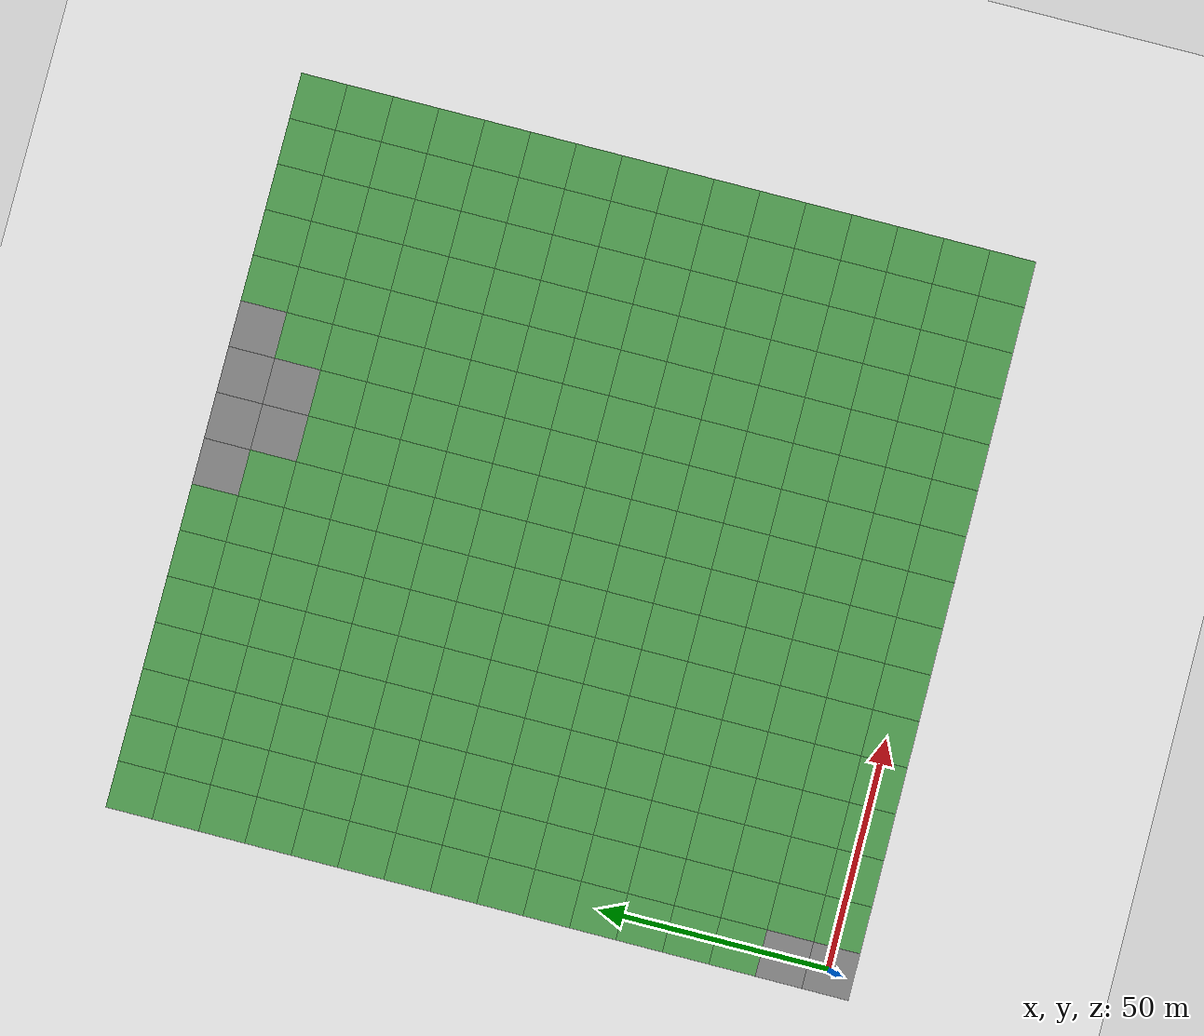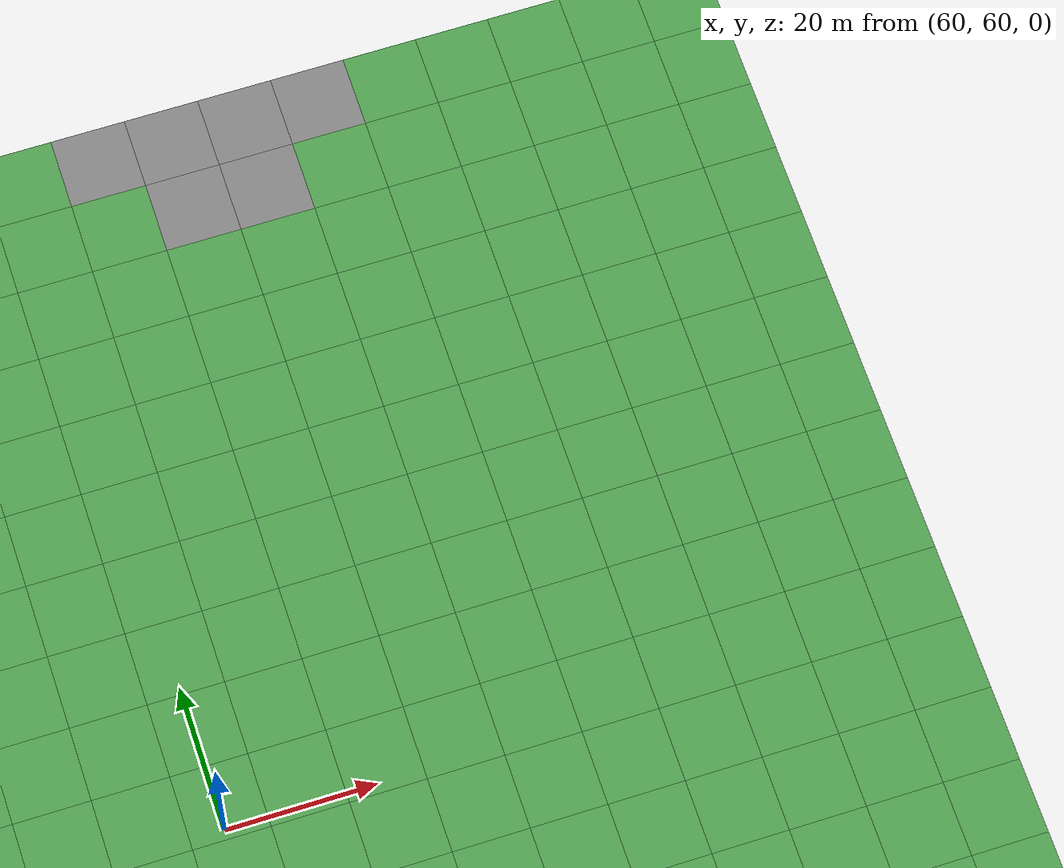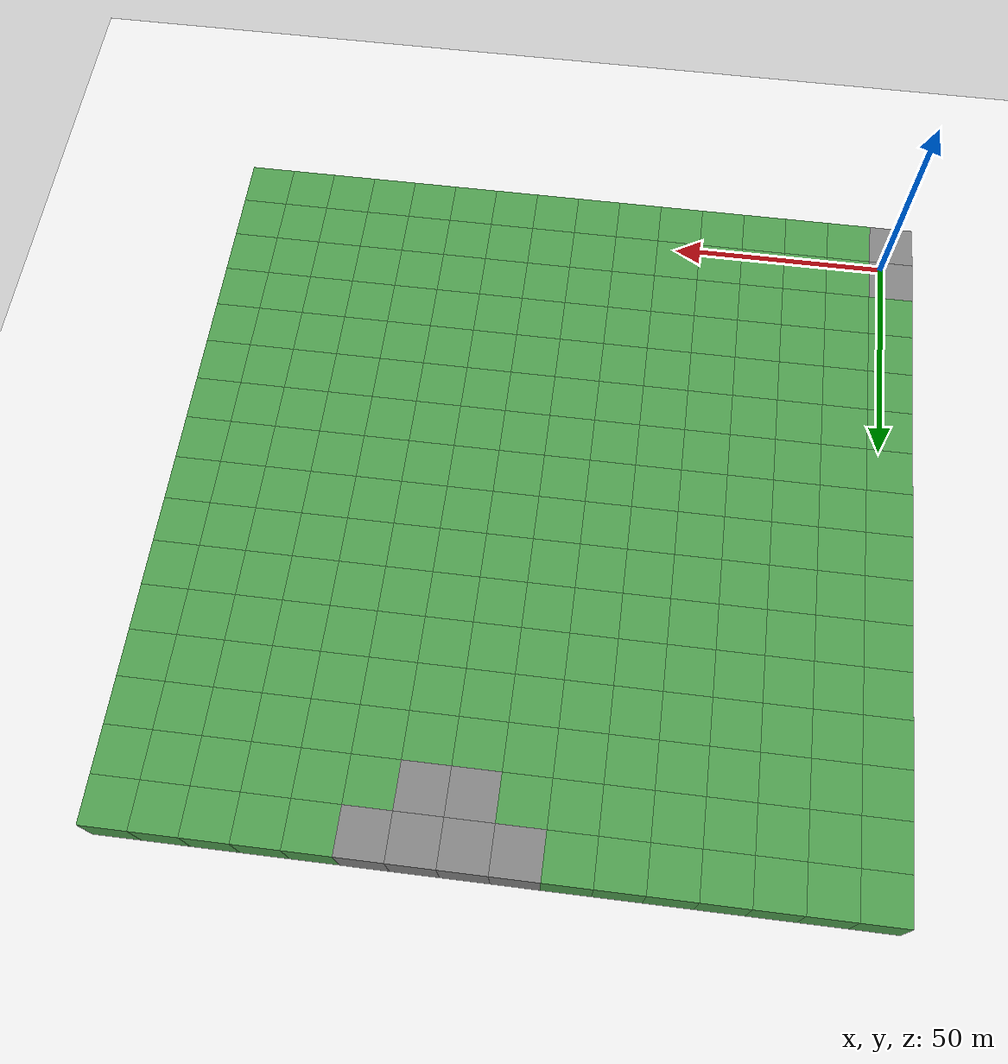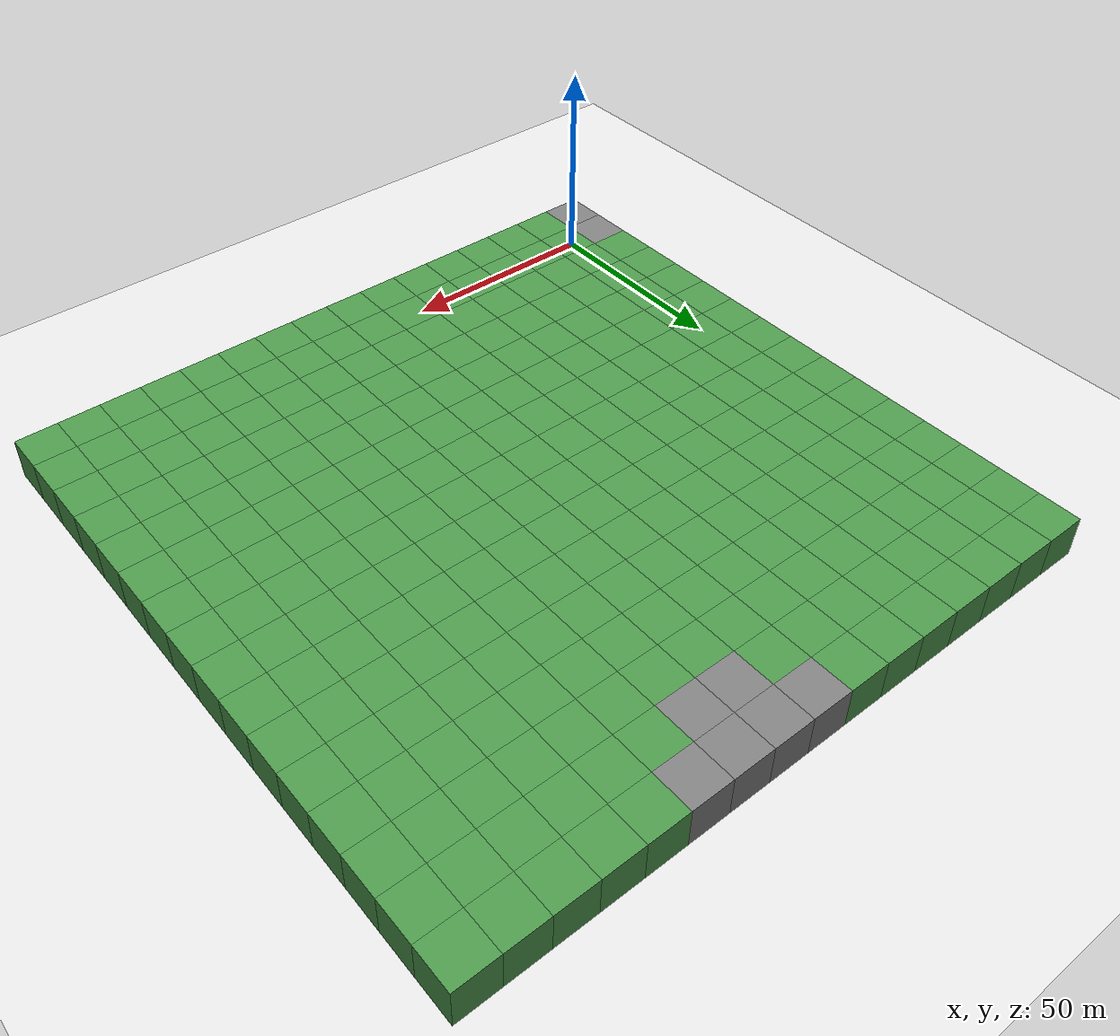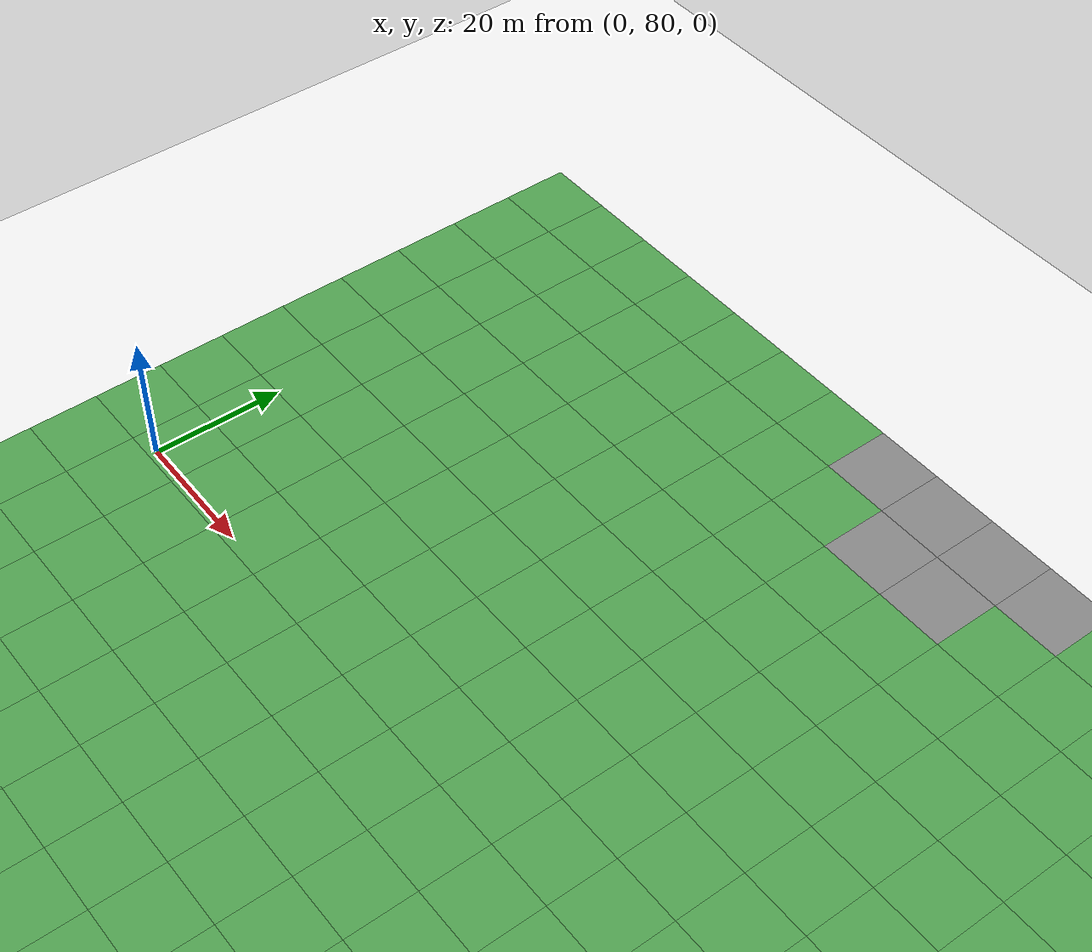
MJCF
<mujoco model="mca_arena">
  <default>
    <default class="/"/>
  </default>
  <worldbody>
    <geom name="floor" class="/" type="plane" size="500 500 0.10000000000000001" rgba="0.90000000000000002 0.90000000000000002 0.90000000000000002 1" pos="0 0 0"/>
    <geom name="cave_air_0_0" class="/" type="box" size="5 5 5" rgba="0.5 0.5 0.5 1" pos="0 0 5"/>
    <geom name="cave_air_0_1" class="/" type="box" size="5 5 5" rgba="0.5 0.5 0.5 1" pos="0 10 5"/>
    <geom name="grass_block_0_2" class="/" type="box" size="5 5 5" rgba="0.29999999999999999 0.59999999999999998 0.29999999999999999 1" pos="0 20 5"/>
    <geom name="grass_block_0_3" class="/" type="box" size="5 5 5" rgba="0.29999999999999999 0.59999999999999998 0.29999999999999999 1" pos="0 30 5"/>
    <geom name="grass_block_0_4" class="/" type="box" size="5 5 5" rgba="0.29999999999999999 0.59999999999999998 0.29999999999999999 1" pos="0 40 5"/>
    <geom name="grass_block_0_5" class="/" type="box" size="5 5 5" rgba="0.29999999999999999 0.59999999999999998 0.29999999999999999 1" pos="0 50 5"/>
    <geom name="grass_block_0_6" class="/" type="box" size="5 5 5" rgba="0.29999999999999999 0.59999999999999998 0.29999999999999999 1" pos="0 60 5"/>
    <geom name="grass_block_0_7" class="/" type="box" size="5 5 5" rgba="0.29999999999999999 0.59999999999999998 0.29999999999999999 1" pos="0 70 5"/>
    <geom name="grass_block_0_8" class="/" type="box" size="5 5 5" rgba="0.29999999999999999 0.59999999999999998 0.29999999999999999 1" pos="0 80 5"/>
    <geom name="grass_block_0_9" class="/" type="box" size="5 5 5" rgba="0.29999999999999999 0.59999999999999998 0.29999999999999999 1" pos="0 90 5"/>
    <geom name="grass_block_0_10" class="/" type="box" size="5 5 5" rgba="0.29999999999999999 0.59999999999999998 0.29999999999999999 1" pos="0 100 5"/>
    <geom name="grass_0_11" class="/" type="box" size="5 5 5" rgba="0.29999999999999999 0.59999999999999998 0.29999999999999999 1" pos="0 110 5"/>
    <geom name="grass_block_0_12" class="/" type="box" size="5 5 5" rgba="0.29999999999999999 0.59999999999999998 0.29999999999999999 1" pos="0 120 5"/>
    <geom name="grass_block_0_13" class="/" type="box" size="5 5 5" rgba="0.29999999999999999 0.59999999999999998 0.29999999999999999 1" pos="0 130 5"/>
    <geom name="grass_block_0_14" class="/" type="box" size="5 5 5" rgba="0.29999999999999999 0.59999999999999998 0.29999999999999999 1" pos="0 140 5"/>
    <geom name="grass_block_0_15" class="/" type="box" size="5 5 5" rgba="0.29999999999999999 0.59999999999999998 0.29999999999999999 1" pos="0 150 5"/>
    <geom name="grass_block_1_0" class="/" type="box" size="5 5 5" rgba="0.29999999999999999 0.59999999999999998 0.29999999999999999 1" pos="10 0 5"/>
    <geom name="grass_block_1_1" class="/" type="box" size="5 5 5" rgba="0.29999999999999999 0.59999999999999998 0.29999999999999999 1" pos="10 10 5"/>
    <geom name="grass_1_2" class="/" type="box" size="5 5 5" rgba="0.29999999999999999 0.59999999999999998 0.29999999999999999 1" pos="10 20 5"/>
    <geom name="grass_block_1_3" class="/" type="box" size="5 5 5" rgba="0.29999999999999999 0.59999999999999998 0.29999999999999999 1" pos="10 30 5"/>
    <geom name="grass_block_1_4" class="/" type="box" size="5 5 5" rgba="0.29999999999999999 0.59999999999999998 0.29999999999999999 1" pos="10 40 5"/>
    <geom name="grass_block_1_5" class="/" type="box" size="5 5 5" rgba="0.29999999999999999 0.59999999999999998 0.29999999999999999 1" pos="10 50 5"/>
    <geom name="grass_block_1_6" class="/" type="box" size="5 5 5" rgba="0.29999999999999999 0.59999999999999998 0.29999999999999999 1" pos="10 60 5"/>
    <geom name="grass_block_1_7" class="/" type="box" size="5 5 5" rgba="0.29999999999999999 0.59999999999999998 0.29999999999999999 1" pos="10 70 5"/>
    <geom name="grass_block_1_8" class="/" type="box" size="5 5 5" rgba="0.29999999999999999 0.59999999999999998 0.29999999999999999 1" pos="10 80 5"/>
    <geom name="grass_block_1_9" class="/" type="box" size="5 5 5" rgba="0.29999999999999999 0.59999999999999998 0.29999999999999999 1" pos="10 90 5"/>
    <geom name="grass_block_1_10" class="/" type="box" size="5 5 5" rgba="0.29999999999999999 0.59999999999999998 0.29999999999999999 1" pos="10 100 5"/>
    <geom name="grass_block_1_11" class="/" type="box" size="5 5 5" rgba="0.29999999999999999 0.59999999999999998 0.29999999999999999 1" pos="10 110 5"/>
    <geom name="grass_block_1_12" class="/" type="box" size="5 5 5" rgba="0.29999999999999999 0.59999999999999998 0.29999999999999999 1" pos="10 120 5"/>
    <geom name="grass_block_1_13" class="/" type="box" size="5 5 5" rgba="0.29999999999999999 0.59999999999999998 0.29999999999999999 1" pos="10 130 5"/>
    <geom name="grass_block_1_14" class="/" type="box" size="5 5 5" rgba="0.29999999999999999 0.59999999999999998 0.29999999999999999 1" pos="10 140 5"/>
    <geom name="grass_block_1_15" class="/" type="box" size="5 5 5" rgba="0.29999999999999999 0.59999999999999998 0.29999999999999999 1" pos="10 150 5"/>
    <geom name="tall_grass_2_0" class="/" type="box" size="5 5 5" rgba="0.29999999999999999 0.59999999999999998 0.29999999999999999 1" pos="20 0 5"/>
    <geom name="grass_block_2_1" class="/" type="box" size="5 5 5" rgba="0.29999999999999999 0.59999999999999998 0.29999999999999999 1" pos="20 10 5"/>
    <geom name="grass_2_2" class="/" type="box" size="5 5 5" rgba="0.29999999999999999 0.59999999999999998 0.29999999999999999 1" pos="20 20 5"/>
    <geom name="grass_block_2_3" class="/" type="box" size="5 5 5" rgba="0.29999999999999999 0.59999999999999998 0.29999999999999999 1" pos="20 30 5"/>
    <geom name="grass_block_2_4" class="/" type="box" size="5 5 5" rgba="0.29999999999999999 0.59999999999999998 0.29999999999999999 1" pos="20 40 5"/>
    <geom name="grass_block_2_5" class="/" type="box" size="5 5 5" rgba="0.29999999999999999 0.59999999999999998 0.29999999999999999 1" pos="20 50 5"/>
    <geom name="grass_block_2_6" class="/" type="box" size="5 5 5" rgba="0.29999999999999999 0.59999999999999998 0.29999999999999999 1" pos="20 60 5"/>
    <geom name="grass_2_7" class="/" type="box" size="5 5 5" rgba="0.29999999999999999 0.59999999999999998 0.29999999999999999 1" pos="20 70 5"/>
    <geom name="grass_block_2_8" class="/" type="box" size="5 5 5" rgba="0.29999999999999999 0.59999999999999998 0.29999999999999999 1" pos="20 80 5"/>
    <geom name="grass_block_2_9" class="/" type="box" size="5 5 5" rgba="0.29999999999999999 0.59999999999999998 0.29999999999999999 1" pos="20 90 5"/>
    <geom name="grass_block_2_10" class="/" type="box" size="5 5 5" rgba="0.29999999999999999 0.59999999999999998 0.29999999999999999 1" pos="20 100 5"/>
    <geom name="grass_block_2_11" class="/" type="box" size="5 5 5" rgba="0.29999999999999999 0.59999999999999998 0.29999999999999999 1" pos="20 110 5"/>
    <geom name="grass_2_12" class="/" type="box" size="5 5 5" rgba="0.29999999999999999 0.59999999999999998 0.29999999999999999 1" pos="20 120 5"/>
    <geom name="grass_block_2_13" class="/" type="box" size="5 5 5" rgba="0.29999999999999999 0.59999999999999998 0.29999999999999999 1" pos="20 130 5"/>
    <geom name="grass_block_2_14" class="/" type="box" size="5 5 5" rgba="0.29999999999999999 0.59999999999999998 0.29999999999999999 1" pos="20 140 5"/>
    <geom name="grass_block_2_15" class="/" type="box" size="5 5 5" rgba="0.29999999999999999 0.59999999999999998 0.29999999999999999 1" pos="20 150 5"/>
    <geom name="grass_block_3_0" class="/" type="box" size="5 5 5" rgba="0.29999999999999999 0.59999999999999998 0.29999999999999999 1" pos="30 0 5"/>
    <geom name="grass_block_3_1" class="/" type="box" size="5 5 5" rgba="0.29999999999999999 0.59999999999999998 0.29999999999999999 1" pos="30 10 5"/>
    <geom name="grass_block_3_2" class="/" type="box" size="5 5 5" rgba="0.29999999999999999 0.59999999999999998 0.29999999999999999 1" pos="30 20 5"/>
    <geom name="grass_block_3_3" class="/" type="box" size="5 5 5" rgba="0.29999999999999999 0.59999999999999998 0.29999999999999999 1" pos="30 30 5"/>
    <geom name="grass_block_3_4" class="/" type="box" size="5 5 5" rgba="0.29999999999999999 0.59999999999999998 0.29999999999999999 1" pos="30 40 5"/>
    <geom name="grass_block_3_5" class="/" type="box" size="5 5 5" rgba="0.29999999999999999 0.59999999999999998 0.29999999999999999 1" pos="30 50 5"/>
    <geom name="grass_3_6" class="/" type="box" size="5 5 5" rgba="0.29999999999999999 0.59999999999999998 0.29999999999999999 1" pos="30 60 5"/>
    <geom name="grass_block_3_7" class="/" type="box" size="5 5 5" rgba="0.29999999999999999 0.59999999999999998 0.29999999999999999 1" pos="30 70 5"/>
    <geom name="grass_block_3_8" class="/" type="box" size="5 5 5" rgba="0.29999999999999999 0.59999999999999998 0.29999999999999999 1" pos="30 80 5"/>
    <geom name="grass_block_3_9" class="/" type="box" size="5 5 5" rgba="0.29999999999999999 0.59999999999999998 0.29999999999999999 1" pos="30 90 5"/>
    <geom name="grass_block_3_10" class="/" type="box" size="5 5 5" rgba="0.29999999999999999 0.59999999999999998 0.29999999999999999 1" pos="30 100 5"/>
    <geom name="grass_block_3_11" class="/" type="box" size="5 5 5" rgba="0.29999999999999999 0.59999999999999998 0.29999999999999999 1" pos="30 110 5"/>
    <geom name="grass_block_3_12" class="/" type="box" size="5 5 5" rgba="0.29999999999999999 0.59999999999999998 0.29999999999999999 1" pos="30 120 5"/>
    <geom name="grass_block_3_13" class="/" type="box" size="5 5 5" rgba="0.29999999999999999 0.59999999999999998 0.29999999999999999 1" pos="30 130 5"/>
    <geom name="grass_3_14" class="/" type="box" size="5 5 5" rgba="0.29999999999999999 0.59999999999999998 0.29999999999999999 1" pos="30 140 5"/>
    <geom name="grass_3_15" class="/" type="box" size="5 5 5" rgba="0.29999999999999999 0.59999999999999998 0.29999999999999999 1" pos="30 150 5"/>
    <geom name="grass_block_4_0" class="/" type="box" size="5 5 5" rgba="0.29999999999999999 0.59999999999999998 0.29999999999999999 1" pos="40 0 5"/>
    <geom name="grass_block_4_1" class="/" type="box" size="5 5 5" rgba="0.29999999999999999 0.59999999999999998 0.29999999999999999 1" pos="40 10 5"/>
    <geom name="grass_block_4_2" class="/" type="box" size="5 5 5" rgba="0.29999999999999999 0.59999999999999998 0.29999999999999999 1" pos="40 20 5"/>
    <geom name="grass_block_4_3" class="/" type="box" size="5 5 5" rgba="0.29999999999999999 0.59999999999999998 0.29999999999999999 1" pos="40 30 5"/>
    <geom name="grass_block_4_4" class="/" type="box" size="5 5 5" rgba="0.29999999999999999 0.59999999999999998 0.29999999999999999 1" pos="40 40 5"/>
    <geom name="grass_4_5" class="/" type="box" size="5 5 5" rgba="0.29999999999999999 0.59999999999999998 0.29999999999999999 1" pos="40 50 5"/>
    <geom name="grass_block_4_6" class="/" type="box" size="5 5 5" rgba="0.29999999999999999 0.59999999999999998 0.29999999999999999 1" pos="40 60 5"/>
    <geom name="grass_4_7" class="/" type="box" size="5 5 5" rgba="0.29999999999999999 0.59999999999999998 0.29999999999999999 1" pos="40 70 5"/>
    <geom name="grass_block_4_8" class="/" type="box" size="5 5 5" rgba="0.29999999999999999 0.59999999999999998 0.29999999999999999 1" pos="40 80 5"/>
    <geom name="grass_block_4_9" class="/" type="box" size="5 5 5" rgba="0.29999999999999999 0.59999999999999998 0.29999999999999999 1" pos="40 90 5"/>
    <geom name="grass_block_4_10" class="/" type="box" size="5 5 5" rgba="0.29999999999999999 0.59999999999999998 0.29999999999999999 1" pos="40 100 5"/>
    <geom name="grass_block_4_11" class="/" type="box" size="5 5 5" rgba="0.29999999999999999 0.59999999999999998 0.29999999999999999 1" pos="40 110 5"/>
    <geom name="grass_4_12" class="/" type="box" size="5 5 5" rgba="0.29999999999999999 0.59999999999999998 0.29999999999999999 1" pos="40 120 5"/>
    <geom name="grass_block_4_13" class="/" type="box" size="5 5 5" rgba="0.29999999999999999 0.59999999999999998 0.29999999999999999 1" pos="40 130 5"/>
    <geom name="grass_block_4_14" class="/" type="box" size="5 5 5" rgba="0.29999999999999999 0.59999999999999998 0.29999999999999999 1" pos="40 140 5"/>
    <geom name="grass_block_4_15" class="/" type="box" size="5 5 5" rgba="0.29999999999999999 0.59999999999999998 0.29999999999999999 1" pos="40 150 5"/>
    <geom name="grass_block_5_0" class="/" type="box" size="5 5 5" rgba="0.29999999999999999 0.59999999999999998 0.29999999999999999 1" pos="50 0 5"/>
    <geom name="grass_5_1" class="/" type="box" size="5 5 5" rgba="0.29999999999999999 0.59999999999999998 0.29999999999999999 1" pos="50 10 5"/>
    <geom name="grass_block_5_2" class="/" type="box" size="5 5 5" rgba="0.29999999999999999 0.59999999999999998 0.29999999999999999 1" pos="50 20 5"/>
    <geom name="grass_block_5_3" class="/" type="box" size="5 5 5" rgba="0.29999999999999999 0.59999999999999998 0.29999999999999999 1" pos="50 30 5"/>
    <geom name="grass_block_5_4" class="/" type="box" size="5 5 5" rgba="0.29999999999999999 0.59999999999999998 0.29999999999999999 1" pos="50 40 5"/>
    <geom name="grass_block_5_5" class="/" type="box" size="5 5 5" rgba="0.29999999999999999 0.59999999999999998 0.29999999999999999 1" pos="50 50 5"/>
    <geom name="grass_5_6" class="/" type="box" size="5 5 5" rgba="0.29999999999999999 0.59999999999999998 0.29999999999999999 1" pos="50 60 5"/>
    <geom name="grass_block_5_7" class="/" type="box" size="5 5 5" rgba="0.29999999999999999 0.59999999999999998 0.29999999999999999 1" pos="50 70 5"/>
    <geom name="grass_block_5_8" class="/" type="box" size="5 5 5" rgba="0.29999999999999999 0.59999999999999998 0.29999999999999999 1" pos="50 80 5"/>
    <geom name="grass_block_5_9" class="/" type="box" size="5 5 5" rgba="0.29999999999999999 0.59999999999999998 0.29999999999999999 1" pos="50 90 5"/>
    <geom name="grass_block_5_10" class="/" type="box" size="5 5 5" rgba="0.29999999999999999 0.59999999999999998 0.29999999999999999 1" pos="50 100 5"/>
    <geom name="grass_block_5_11" class="/" type="box" size="5 5 5" rgba="0.29999999999999999 0.59999999999999998 0.29999999999999999 1" pos="50 110 5"/>
    <geom name="grass_block_5_12" class="/" type="box" size="5 5 5" rgba="0.29999999999999999 0.59999999999999998 0.29999999999999999 1" pos="50 120 5"/>
    <geom name="grass_block_5_13" class="/" type="box" size="5 5 5" rgba="0.29999999999999999 0.59999999999999998 0.29999999999999999 1" pos="50 130 5"/>
    <geom name="grass_block_5_14" class="/" type="box" size="5 5 5" rgba="0.29999999999999999 0.59999999999999998 0.29999999999999999 1" pos="50 140 5"/>
    <geom name="grass_block_5_15" class="/" type="box" size="5 5 5" rgba="0.29999999999999999 0.59999999999999998 0.29999999999999999 1" pos="50 150 5"/>
    <geom name="grass_block_6_0" class="/" type="box" size="5 5 5" rgba="0.29999999999999999 0.59999999999999998 0.29999999999999999 1" pos="60 0 5"/>
    <geom name="grass_block_6_1" class="/" type="box" size="5 5 5" rgba="0.29999999999999999 0.59999999999999998 0.29999999999999999 1" pos="60 10 5"/>
    <geom name="grass_block_6_2" class="/" type="box" size="5 5 5" rgba="0.29999999999999999 0.59999999999999998 0.29999999999999999 1" pos="60 20 5"/>
    <geom name="grass_6_3" class="/" type="box" size="5 5 5" rgba="0.29999999999999999 0.59999999999999998 0.29999999999999999 1" pos="60 30 5"/>
    <geom name="grass_block_6_4" class="/" type="box" size="5 5 5" rgba="0.29999999999999999 0.59999999999999998 0.29999999999999999 1" pos="60 40 5"/>
    <geom name="grass_block_6_5" class="/" type="box" size="5 5 5" rgba="0.29999999999999999 0.59999999999999998 0.29999999999999999 1" pos="60 50 5"/>
    <geom name="grass_block_6_6" class="/" type="box" size="5 5 5" rgba="0.29999999999999999 0.59999999999999998 0.29999999999999999 1" pos="60 60 5"/>
    <geom name="grass_block_6_7" class="/" type="box" size="5 5 5" rgba="0.29999999999999999 0.59999999999999998 0.29999999999999999 1" pos="60 70 5"/>
    <geom name="grass_block_6_8" class="/" type="box" size="5 5 5" rgba="0.29999999999999999 0.59999999999999998 0.29999999999999999 1" pos="60 80 5"/>
    <geom name="grass_block_6_9" class="/" type="box" size="5 5 5" rgba="0.29999999999999999 0.59999999999999998 0.29999999999999999 1" pos="60 90 5"/>
    <geom name="grass_block_6_10" class="/" type="box" size="5 5 5" rgba="0.29999999999999999 0.59999999999999998 0.29999999999999999 1" pos="60 100 5"/>
    <geom name="grass_block_6_11" class="/" type="box" size="5 5 5" rgba="0.29999999999999999 0.59999999999999998 0.29999999999999999 1" pos="60 110 5"/>
    <geom name="grass_block_6_12" class="/" type="box" size="5 5 5" rgba="0.29999999999999999 0.59999999999999998 0.29999999999999999 1" pos="60 120 5"/>
    <geom name="grass_block_6_13" class="/" type="box" size="5 5 5" rgba="0.29999999999999999 0.59999999999999998 0.29999999999999999 1" pos="60 130 5"/>
    <geom name="grass_block_6_14" class="/" type="box" size="5 5 5" rgba="0.29999999999999999 0.59999999999999998 0.29999999999999999 1" pos="60 140 5"/>
    <geom name="grass_block_6_15" class="/" type="box" size="5 5 5" rgba="0.29999999999999999 0.59999999999999998 0.29999999999999999 1" pos="60 150 5"/>
    <geom name="grass_block_7_0" class="/" type="box" size="5 5 5" rgba="0.29999999999999999 0.59999999999999998 0.29999999999999999 1" pos="70 0 5"/>
    <geom name="grass_block_7_1" class="/" type="box" size="5 5 5" rgba="0.29999999999999999 0.59999999999999998 0.29999999999999999 1" pos="70 10 5"/>
    <geom name="grass_block_7_2" class="/" type="box" size="5 5 5" rgba="0.29999999999999999 0.59999999999999998 0.29999999999999999 1" pos="70 20 5"/>
    <geom name="grass_7_3" class="/" type="box" size="5 5 5" rgba="0.29999999999999999 0.59999999999999998 0.29999999999999999 1" pos="70 30 5"/>
    <geom name="grass_block_7_4" class="/" type="box" size="5 5 5" rgba="0.29999999999999999 0.59999999999999998 0.29999999999999999 1" pos="70 40 5"/>
    <geom name="grass_block_7_5" class="/" type="box" size="5 5 5" rgba="0.29999999999999999 0.59999999999999998 0.29999999999999999 1" pos="70 50 5"/>
    <geom name="grass_block_7_6" class="/" type="box" size="5 5 5" rgba="0.29999999999999999 0.59999999999999998 0.29999999999999999 1" pos="70 60 5"/>
    <geom name="grass_7_7" class="/" type="box" size="5 5 5" rgba="0.29999999999999999 0.59999999999999998 0.29999999999999999 1" pos="70 70 5"/>
    <geom name="grass_block_7_8" class="/" type="box" size="5 5 5" rgba="0.29999999999999999 0.59999999999999998 0.29999999999999999 1" pos="70 80 5"/>
    <geom name="grass_7_9" class="/" type="box" size="5 5 5" rgba="0.29999999999999999 0.59999999999999998 0.29999999999999999 1" pos="70 90 5"/>
    <geom name="grass_block_7_10" class="/" type="box" size="5 5 5" rgba="0.29999999999999999 0.59999999999999998 0.29999999999999999 1" pos="70 100 5"/>
    <geom name="grass_block_7_11" class="/" type="box" size="5 5 5" rgba="0.29999999999999999 0.59999999999999998 0.29999999999999999 1" pos="70 110 5"/>
    <geom name="grass_block_7_12" class="/" type="box" size="5 5 5" rgba="0.29999999999999999 0.59999999999999998 0.29999999999999999 1" pos="70 120 5"/>
    <geom name="grass_block_7_13" class="/" type="box" size="5 5 5" rgba="0.29999999999999999 0.59999999999999998 0.29999999999999999 1" pos="70 130 5"/>
    <geom name="grass_block_7_14" class="/" type="box" size="5 5 5" rgba="0.29999999999999999 0.59999999999999998 0.29999999999999999 1" pos="70 140 5"/>
    <geom name="granite_7_15" class="/" type="box" size="5 5 5" rgba="0.5 0.5 0.5 1" pos="70 150 5"/>
    <geom name="grass_block_8_0" class="/" type="box" size="5 5 5" rgba="0.29999999999999999 0.59999999999999998 0.29999999999999999 1" pos="80 0 5"/>
    <geom name="grass_block_8_1" class="/" type="box" size="5 5 5" rgba="0.29999999999999999 0.59999999999999998 0.29999999999999999 1" pos="80 10 5"/>
    <geom name="grass_block_8_2" class="/" type="box" size="5 5 5" rgba="0.29999999999999999 0.59999999999999998 0.29999999999999999 1" pos="80 20 5"/>
    <geom name="grass_block_8_3" class="/" type="box" size="5 5 5" rgba="0.29999999999999999 0.59999999999999998 0.29999999999999999 1" pos="80 30 5"/>
    <geom name="grass_block_8_4" class="/" type="box" size="5 5 5" rgba="0.29999999999999999 0.59999999999999998 0.29999999999999999 1" pos="80 40 5"/>
    <geom name="grass_8_5" class="/" type="box" size="5 5 5" rgba="0.29999999999999999 0.59999999999999998 0.29999999999999999 1" pos="80 50 5"/>
    <geom name="grass_block_8_6" class="/" type="box" size="5 5 5" rgba="0.29999999999999999 0.59999999999999998 0.29999999999999999 1" pos="80 60 5"/>
    <geom name="grass_block_8_7" class="/" type="box" size="5 5 5" rgba="0.29999999999999999 0.59999999999999998 0.29999999999999999 1" pos="80 70 5"/>
    <geom name="grass_block_8_8" class="/" type="box" size="5 5 5" rgba="0.29999999999999999 0.59999999999999998 0.29999999999999999 1" pos="80 80 5"/>
    <geom name="grass_block_8_9" class="/" type="box" size="5 5 5" rgba="0.29999999999999999 0.59999999999999998 0.29999999999999999 1" pos="80 90 5"/>
    <geom name="grass_8_10" class="/" type="box" size="5 5 5" rgba="0.29999999999999999 0.59999999999999998 0.29999999999999999 1" pos="80 100 5"/>
    <geom name="grass_8_11" class="/" type="box" size="5 5 5" rgba="0.29999999999999999 0.59999999999999998 0.29999999999999999 1" pos="80 110 5"/>
    <geom name="grass_block_8_12" class="/" type="box" size="5 5 5" rgba="0.29999999999999999 0.59999999999999998 0.29999999999999999 1" pos="80 120 5"/>
    <geom name="grass_block_8_13" class="/" type="box" size="5 5 5" rgba="0.29999999999999999 0.59999999999999998 0.29999999999999999 1" pos="80 130 5"/>
    <geom name="stone_8_14" class="/" type="box" size="5 5 5" rgba="0.5 0.5 0.5 1" pos="80 140 5"/>
    <geom name="stone_8_15" class="/" type="box" size="5 5 5" rgba="0.5 0.5 0.5 1" pos="80 150 5"/>
    <geom name="grass_block_9_0" class="/" type="box" size="5 5 5" rgba="0.29999999999999999 0.59999999999999998 0.29999999999999999 1" pos="90 0 5"/>
    <geom name="grass_block_9_1" class="/" type="box" size="5 5 5" rgba="0.29999999999999999 0.59999999999999998 0.29999999999999999 1" pos="90 10 5"/>
    <geom name="grass_block_9_2" class="/" type="box" size="5 5 5" rgba="0.29999999999999999 0.59999999999999998 0.29999999999999999 1" pos="90 20 5"/>
    <geom name="grass_block_9_3" class="/" type="box" size="5 5 5" rgba="0.29999999999999999 0.59999999999999998 0.29999999999999999 1" pos="90 30 5"/>
    <geom name="grass_9_4" class="/" type="box" size="5 5 5" rgba="0.29999999999999999 0.59999999999999998 0.29999999999999999 1" pos="90 40 5"/>
    <geom name="grass_block_9_5" class="/" type="box" size="5 5 5" rgba="0.29999999999999999 0.59999999999999998 0.29999999999999999 1" pos="90 50 5"/>
    <geom name="grass_block_9_6" class="/" type="box" size="5 5 5" rgba="0.29999999999999999 0.59999999999999998 0.29999999999999999 1" pos="90 60 5"/>
    <geom name="grass_block_9_7" class="/" type="box" size="5 5 5" rgba="0.29999999999999999 0.59999999999999998 0.29999999999999999 1" pos="90 70 5"/>
    <geom name="grass_9_8" class="/" type="box" size="5 5 5" rgba="0.29999999999999999 0.59999999999999998 0.29999999999999999 1" pos="90 80 5"/>
    <geom name="grass_block_9_9" class="/" type="box" size="5 5 5" rgba="0.29999999999999999 0.59999999999999998 0.29999999999999999 1" pos="90 90 5"/>
    <geom name="grass_block_9_10" class="/" type="box" size="5 5 5" rgba="0.29999999999999999 0.59999999999999998 0.29999999999999999 1" pos="90 100 5"/>
    <geom name="grass_block_9_11" class="/" type="box" size="5 5 5" rgba="0.29999999999999999 0.59999999999999998 0.29999999999999999 1" pos="90 110 5"/>
    <geom name="grass_block_9_12" class="/" type="box" size="5 5 5" rgba="0.29999999999999999 0.59999999999999998 0.29999999999999999 1" pos="90 120 5"/>
    <geom name="grass_block_9_13" class="/" type="box" size="5 5 5" rgba="0.29999999999999999 0.59999999999999998 0.29999999999999999 1" pos="90 130 5"/>
    <geom name="stone_9_14" class="/" type="box" size="5 5 5" rgba="0.5 0.5 0.5 1" pos="90 140 5"/>
    <geom name="stone_9_15" class="/" type="box" size="5 5 5" rgba="0.5 0.5 0.5 1" pos="90 150 5"/>
    <geom name="grass_block_10_0" class="/" type="box" size="5 5 5" rgba="0.29999999999999999 0.59999999999999998 0.29999999999999999 1" pos="100 0 5"/>
    <geom name="grass_block_10_1" class="/" type="box" size="5 5 5" rgba="0.29999999999999999 0.59999999999999998 0.29999999999999999 1" pos="100 10 5"/>
    <geom name="grass_block_10_2" class="/" type="box" size="5 5 5" rgba="0.29999999999999999 0.59999999999999998 0.29999999999999999 1" pos="100 20 5"/>
    <geom name="grass_block_10_3" class="/" type="box" size="5 5 5" rgba="0.29999999999999999 0.59999999999999998 0.29999999999999999 1" pos="100 30 5"/>
    <geom name="grass_10_4" class="/" type="box" size="5 5 5" rgba="0.29999999999999999 0.59999999999999998 0.29999999999999999 1" pos="100 40 5"/>
    <geom name="grass_10_5" class="/" type="box" size="5 5 5" rgba="0.29999999999999999 0.59999999999999998 0.29999999999999999 1" pos="100 50 5"/>
    <geom name="grass_block_10_6" class="/" type="box" size="5 5 5" rgba="0.29999999999999999 0.59999999999999998 0.29999999999999999 1" pos="100 60 5"/>
    <geom name="grass_10_7" class="/" type="box" size="5 5 5" rgba="0.29999999999999999 0.59999999999999998 0.29999999999999999 1" pos="100 70 5"/>
    <geom name="grass_block_10_8" class="/" type="box" size="5 5 5" rgba="0.29999999999999999 0.59999999999999998 0.29999999999999999 1" pos="100 80 5"/>
    <geom name="grass_block_10_9" class="/" type="box" size="5 5 5" rgba="0.29999999999999999 0.59999999999999998 0.29999999999999999 1" pos="100 90 5"/>
    <geom name="grass_block_10_10" class="/" type="box" size="5 5 5" rgba="0.29999999999999999 0.59999999999999998 0.29999999999999999 1" pos="100 100 5"/>
    <geom name="grass_block_10_11" class="/" type="box" size="5 5 5" rgba="0.29999999999999999 0.59999999999999998 0.29999999999999999 1" pos="100 110 5"/>
    <geom name="grass_10_12" class="/" type="box" size="5 5 5" rgba="0.29999999999999999 0.59999999999999998 0.29999999999999999 1" pos="100 120 5"/>
    <geom name="grass_10_13" class="/" type="box" size="5 5 5" rgba="0.29999999999999999 0.59999999999999998 0.29999999999999999 1" pos="100 130 5"/>
    <geom name="grass_block_10_14" class="/" type="box" size="5 5 5" rgba="0.29999999999999999 0.59999999999999998 0.29999999999999999 1" pos="100 140 5"/>
    <geom name="stone_10_15" class="/" type="box" size="5 5 5" rgba="0.5 0.5 0.5 1" pos="100 150 5"/>
    <geom name="grass_block_11_0" class="/" type="box" size="5 5 5" rgba="0.29999999999999999 0.59999999999999998 0.29999999999999999 1" pos="110 0 5"/>
    <geom name="grass_11_1" class="/" type="box" size="5 5 5" rgba="0.29999999999999999 0.59999999999999998 0.29999999999999999 1" pos="110 10 5"/>
    <geom name="grass_block_11_2" class="/" type="box" size="5 5 5" rgba="0.29999999999999999 0.59999999999999998 0.29999999999999999 1" pos="110 20 5"/>
    <geom name="grass_block_11_3" class="/" type="box" size="5 5 5" rgba="0.29999999999999999 0.59999999999999998 0.29999999999999999 1" pos="110 30 5"/>
    <geom name="grass_block_11_4" class="/" type="box" size="5 5 5" rgba="0.29999999999999999 0.59999999999999998 0.29999999999999999 1" pos="110 40 5"/>
    <geom name="grass_block_11_5" class="/" type="box" size="5 5 5" rgba="0.29999999999999999 0.59999999999999998 0.29999999999999999 1" pos="110 50 5"/>
    <geom name="grass_block_11_6" class="/" type="box" size="5 5 5" rgba="0.29999999999999999 0.59999999999999998 0.29999999999999999 1" pos="110 60 5"/>
    <geom name="grass_block_11_7" class="/" type="box" size="5 5 5" rgba="0.29999999999999999 0.59999999999999998 0.29999999999999999 1" pos="110 70 5"/>
    <geom name="grass_block_11_8" class="/" type="box" size="5 5 5" rgba="0.29999999999999999 0.59999999999999998 0.29999999999999999 1" pos="110 80 5"/>
    <geom name="grass_block_11_9" class="/" type="box" size="5 5 5" rgba="0.29999999999999999 0.59999999999999998 0.29999999999999999 1" pos="110 90 5"/>
    <geom name="grass_block_11_10" class="/" type="box" size="5 5 5" rgba="0.29999999999999999 0.59999999999999998 0.29999999999999999 1" pos="110 100 5"/>
    <geom name="grass_11_11" class="/" type="box" size="5 5 5" rgba="0.29999999999999999 0.59999999999999998 0.29999999999999999 1" pos="110 110 5"/>
    <geom name="grass_block_11_12" class="/" type="box" size="5 5 5" rgba="0.29999999999999999 0.59999999999999998 0.29999999999999999 1" pos="110 120 5"/>
    <geom name="grass_block_11_13" class="/" type="box" size="5 5 5" rgba="0.29999999999999999 0.59999999999999998 0.29999999999999999 1" pos="110 130 5"/>
    <geom name="grass_block_11_14" class="/" type="box" size="5 5 5" rgba="0.29999999999999999 0.59999999999999998 0.29999999999999999 1" pos="110 140 5"/>
    <geom name="grass_block_11_15" class="/" type="box" size="5 5 5" rgba="0.29999999999999999 0.59999999999999998 0.29999999999999999 1" pos="110 150 5"/>
    <geom name="grass_block_12_0" class="/" type="box" size="5 5 5" rgba="0.29999999999999999 0.59999999999999998 0.29999999999999999 1" pos="120 0 5"/>
    <geom name="grass_block_12_1" class="/" type="box" size="5 5 5" rgba="0.29999999999999999 0.59999999999999998 0.29999999999999999 1" pos="120 10 5"/>
    <geom name="grass_12_2" class="/" type="box" size="5 5 5" rgba="0.29999999999999999 0.59999999999999998 0.29999999999999999 1" pos="120 20 5"/>
    <geom name="grass_block_12_3" class="/" type="box" size="5 5 5" rgba="0.29999999999999999 0.59999999999999998 0.29999999999999999 1" pos="120 30 5"/>
    <geom name="grass_block_12_4" class="/" type="box" size="5 5 5" rgba="0.29999999999999999 0.59999999999999998 0.29999999999999999 1" pos="120 40 5"/>
    <geom name="grass_block_12_5" class="/" type="box" size="5 5 5" rgba="0.29999999999999999 0.59999999999999998 0.29999999999999999 1" pos="120 50 5"/>
    <geom name="grass_block_12_6" class="/" type="box" size="5 5 5" rgba="0.29999999999999999 0.59999999999999998 0.29999999999999999 1" pos="120 60 5"/>
    <geom name="grass_block_12_7" class="/" type="box" size="5 5 5" rgba="0.29999999999999999 0.59999999999999998 0.29999999999999999 1" pos="120 70 5"/>
    <geom name="grass_block_12_8" class="/" type="box" size="5 5 5" rgba="0.29999999999999999 0.59999999999999998 0.29999999999999999 1" pos="120 80 5"/>
    <geom name="grass_block_12_9" class="/" type="box" size="5 5 5" rgba="0.29999999999999999 0.59999999999999998 0.29999999999999999 1" pos="120 90 5"/>
    <geom name="grass_block_12_10" class="/" type="box" size="5 5 5" rgba="0.29999999999999999 0.59999999999999998 0.29999999999999999 1" pos="120 100 5"/>
    <geom name="grass_block_12_11" class="/" type="box" size="5 5 5" rgba="0.29999999999999999 0.59999999999999998 0.29999999999999999 1" pos="120 110 5"/>
    <geom name="grass_block_12_12" class="/" type="box" size="5 5 5" rgba="0.29999999999999999 0.59999999999999998 0.29999999999999999 1" pos="120 120 5"/>
    <geom name="grass_block_12_13" class="/" type="box" size="5 5 5" rgba="0.29999999999999999 0.59999999999999998 0.29999999999999999 1" pos="120 130 5"/>
    <geom name="grass_block_12_14" class="/" type="box" size="5 5 5" rgba="0.29999999999999999 0.59999999999999998 0.29999999999999999 1" pos="120 140 5"/>
    <geom name="grass_12_15" class="/" type="box" size="5 5 5" rgba="0.29999999999999999 0.59999999999999998 0.29999999999999999 1" pos="120 150 5"/>
    <geom name="grass_block_13_0" class="/" type="box" size="5 5 5" rgba="0.29999999999999999 0.59999999999999998 0.29999999999999999 1" pos="130 0 5"/>
    <geom name="grass_block_13_1" class="/" type="box" size="5 5 5" rgba="0.29999999999999999 0.59999999999999998 0.29999999999999999 1" pos="130 10 5"/>
    <geom name="grass_13_2" class="/" type="box" size="5 5 5" rgba="0.29999999999999999 0.59999999999999998 0.29999999999999999 1" pos="130 20 5"/>
    <geom name="grass_13_3" class="/" type="box" size="5 5 5" rgba="0.29999999999999999 0.59999999999999998 0.29999999999999999 1" pos="130 30 5"/>
    <geom name="grass_block_13_4" class="/" type="box" size="5 5 5" rgba="0.29999999999999999 0.59999999999999998 0.29999999999999999 1" pos="130 40 5"/>
    <geom name="grass_block_13_5" class="/" type="box" size="5 5 5" rgba="0.29999999999999999 0.59999999999999998 0.29999999999999999 1" pos="130 50 5"/>
    <geom name="grass_13_6" class="/" type="box" size="5 5 5" rgba="0.29999999999999999 0.59999999999999998 0.29999999999999999 1" pos="130 60 5"/>
    <geom name="grass_block_13_7" class="/" type="box" size="5 5 5" rgba="0.29999999999999999 0.59999999999999998 0.29999999999999999 1" pos="130 70 5"/>
    <geom name="grass_13_8" class="/" type="box" size="5 5 5" rgba="0.29999999999999999 0.59999999999999998 0.29999999999999999 1" pos="130 80 5"/>
    <geom name="grass_block_13_9" class="/" type="box" size="5 5 5" rgba="0.29999999999999999 0.59999999999999998 0.29999999999999999 1" pos="130 90 5"/>
    <geom name="grass_13_10" class="/" type="box" size="5 5 5" rgba="0.29999999999999999 0.59999999999999998 0.29999999999999999 1" pos="130 100 5"/>
    <geom name="grass_13_11" class="/" type="box" size="5 5 5" rgba="0.29999999999999999 0.59999999999999998 0.29999999999999999 1" pos="130 110 5"/>
    <geom name="grass_block_13_12" class="/" type="box" size="5 5 5" rgba="0.29999999999999999 0.59999999999999998 0.29999999999999999 1" pos="130 120 5"/>
    <geom name="tall_grass_13_13" class="/" type="box" size="5 5 5" rgba="0.29999999999999999 0.59999999999999998 0.29999999999999999 1" pos="130 130 5"/>
    <geom name="grass_block_13_14" class="/" type="box" size="5 5 5" rgba="0.29999999999999999 0.59999999999999998 0.29999999999999999 1" pos="130 140 5"/>
    <geom name="grass_block_13_15" class="/" type="box" size="5 5 5" rgba="0.29999999999999999 0.59999999999999998 0.29999999999999999 1" pos="130 150 5"/>
    <geom name="grass_14_0" class="/" type="box" size="5 5 5" rgba="0.29999999999999999 0.59999999999999998 0.29999999999999999 1" pos="140 0 5"/>
    <geom name="grass_block_14_1" class="/" type="box" size="5 5 5" rgba="0.29999999999999999 0.59999999999999998 0.29999999999999999 1" pos="140 10 5"/>
    <geom name="grass_block_14_2" class="/" type="box" size="5 5 5" rgba="0.29999999999999999 0.59999999999999998 0.29999999999999999 1" pos="140 20 5"/>
    <geom name="grass_14_3" class="/" type="box" size="5 5 5" rgba="0.29999999999999999 0.59999999999999998 0.29999999999999999 1" pos="140 30 5"/>
    <geom name="grass_block_14_4" class="/" type="box" size="5 5 5" rgba="0.29999999999999999 0.59999999999999998 0.29999999999999999 1" pos="140 40 5"/>
    <geom name="grass_block_14_5" class="/" type="box" size="5 5 5" rgba="0.29999999999999999 0.59999999999999998 0.29999999999999999 1" pos="140 50 5"/>
    <geom name="grass_block_14_6" class="/" type="box" size="5 5 5" rgba="0.29999999999999999 0.59999999999999998 0.29999999999999999 1" pos="140 60 5"/>
    <geom name="grass_14_7" class="/" type="box" size="5 5 5" rgba="0.29999999999999999 0.59999999999999998 0.29999999999999999 1" pos="140 70 5"/>
    <geom name="grass_block_14_8" class="/" type="box" size="5 5 5" rgba="0.29999999999999999 0.59999999999999998 0.29999999999999999 1" pos="140 80 5"/>
    <geom name="grass_block_14_9" class="/" type="box" size="5 5 5" rgba="0.29999999999999999 0.59999999999999998 0.29999999999999999 1" pos="140 90 5"/>
    <geom name="grass_14_10" class="/" type="box" size="5 5 5" rgba="0.29999999999999999 0.59999999999999998 0.29999999999999999 1" pos="140 100 5"/>
    <geom name="grass_block_14_11" class="/" type="box" size="5 5 5" rgba="0.29999999999999999 0.59999999999999998 0.29999999999999999 1" pos="140 110 5"/>
    <geom name="grass_block_14_12" class="/" type="box" size="5 5 5" rgba="0.29999999999999999 0.59999999999999998 0.29999999999999999 1" pos="140 120 5"/>
    <geom name="grass_block_14_13" class="/" type="box" size="5 5 5" rgba="0.29999999999999999 0.59999999999999998 0.29999999999999999 1" pos="140 130 5"/>
    <geom name="grass_block_14_14" class="/" type="box" size="5 5 5" rgba="0.29999999999999999 0.59999999999999998 0.29999999999999999 1" pos="140 140 5"/>
    <geom name="grass_block_14_15" class="/" type="box" size="5 5 5" rgba="0.29999999999999999 0.59999999999999998 0.29999999999999999 1" pos="140 150 5"/>
    <geom name="grass_block_15_0" class="/" type="box" size="5 5 5" rgba="0.29999999999999999 0.59999999999999998 0.29999999999999999 1" pos="150 0 5"/>
    <geom name="grass_block_15_1" class="/" type="box" size="5 5 5" rgba="0.29999999999999999 0.59999999999999998 0.29999999999999999 1" pos="150 10 5"/>
    <geom name="grass_15_2" class="/" type="box" size="5 5 5" rgba="0.29999999999999999 0.59999999999999998 0.29999999999999999 1" pos="150 20 5"/>
    <geom name="grass_block_15_3" class="/" type="box" size="5 5 5" rgba="0.29999999999999999 0.59999999999999998 0.29999999999999999 1" pos="150 30 5"/>
    <geom name="grass_15_4" class="/" type="box" size="5 5 5" rgba="0.29999999999999999 0.59999999999999998 0.29999999999999999 1" pos="150 40 5"/>
    <geom name="grass_block_15_5" class="/" type="box" size="5 5 5" rgba="0.29999999999999999 0.59999999999999998 0.29999999999999999 1" pos="150 50 5"/>
    <geom name="grass_15_6" class="/" type="box" size="5 5 5" rgba="0.29999999999999999 0.59999999999999998 0.29999999999999999 1" pos="150 60 5"/>
    <geom name="grass_block_15_7" class="/" type="box" size="5 5 5" rgba="0.29999999999999999 0.59999999999999998 0.29999999999999999 1" pos="150 70 5"/>
    <geom name="grass_block_15_8" class="/" type="box" size="5 5 5" rgba="0.29999999999999999 0.59999999999999998 0.29999999999999999 1" pos="150 80 5"/>
    <geom name="grass_block_15_9" class="/" type="box" size="5 5 5" rgba="0.29999999999999999 0.59999999999999998 0.29999999999999999 1" pos="150 90 5"/>
    <geom name="grass_15_10" class="/" type="box" size="5 5 5" rgba="0.29999999999999999 0.59999999999999998 0.29999999999999999 1" pos="150 100 5"/>
    <geom name="grass_block_15_11" class="/" type="box" size="5 5 5" rgba="0.29999999999999999 0.59999999999999998 0.29999999999999999 1" pos="150 110 5"/>
    <geom name="grass_15_12" class="/" type="box" size="5 5 5" rgba="0.29999999999999999 0.59999999999999998 0.29999999999999999 1" pos="150 120 5"/>
    <geom name="grass_block_15_13" class="/" type="box" size="5 5 5" rgba="0.29999999999999999 0.59999999999999998 0.29999999999999999 1" pos="150 130 5"/>
    <geom name="grass_block_15_14" class="/" type="box" size="5 5 5" rgba="0.29999999999999999 0.59999999999999998 0.29999999999999999 1" pos="150 140 5"/>
    <geom name="grass_15_15" class="/" type="box" size="5 5 5" rgba="0.29999999999999999 0.59999999999999998 0.29999999999999999 1" pos="150 150 5"/>
  </worldbody>
</mujoco>
